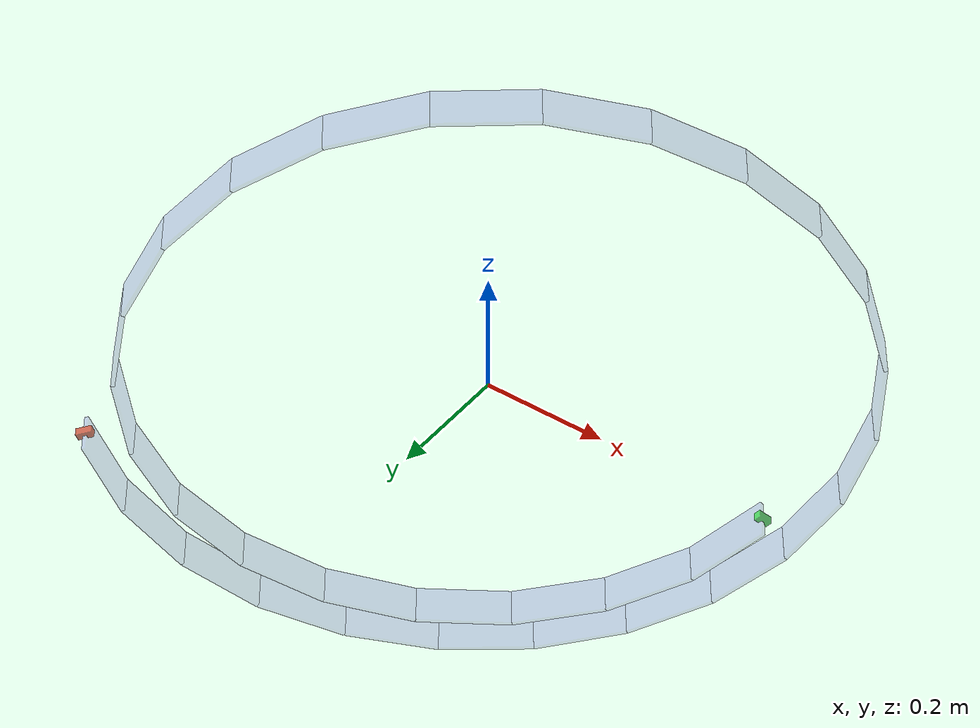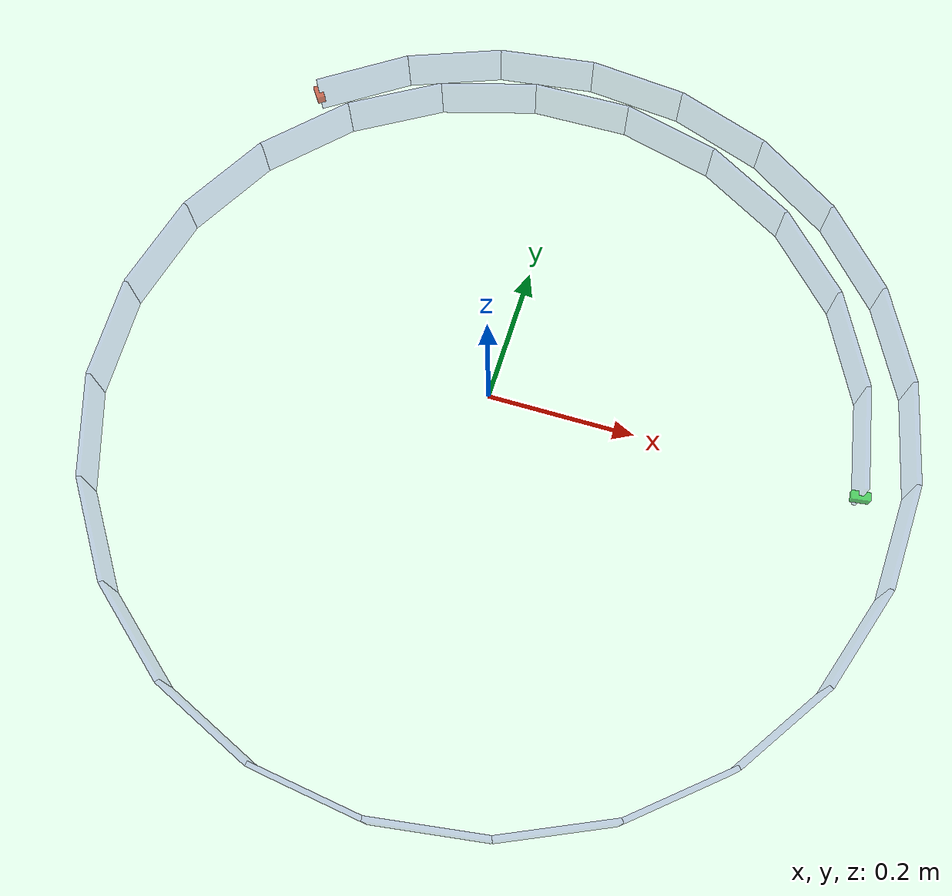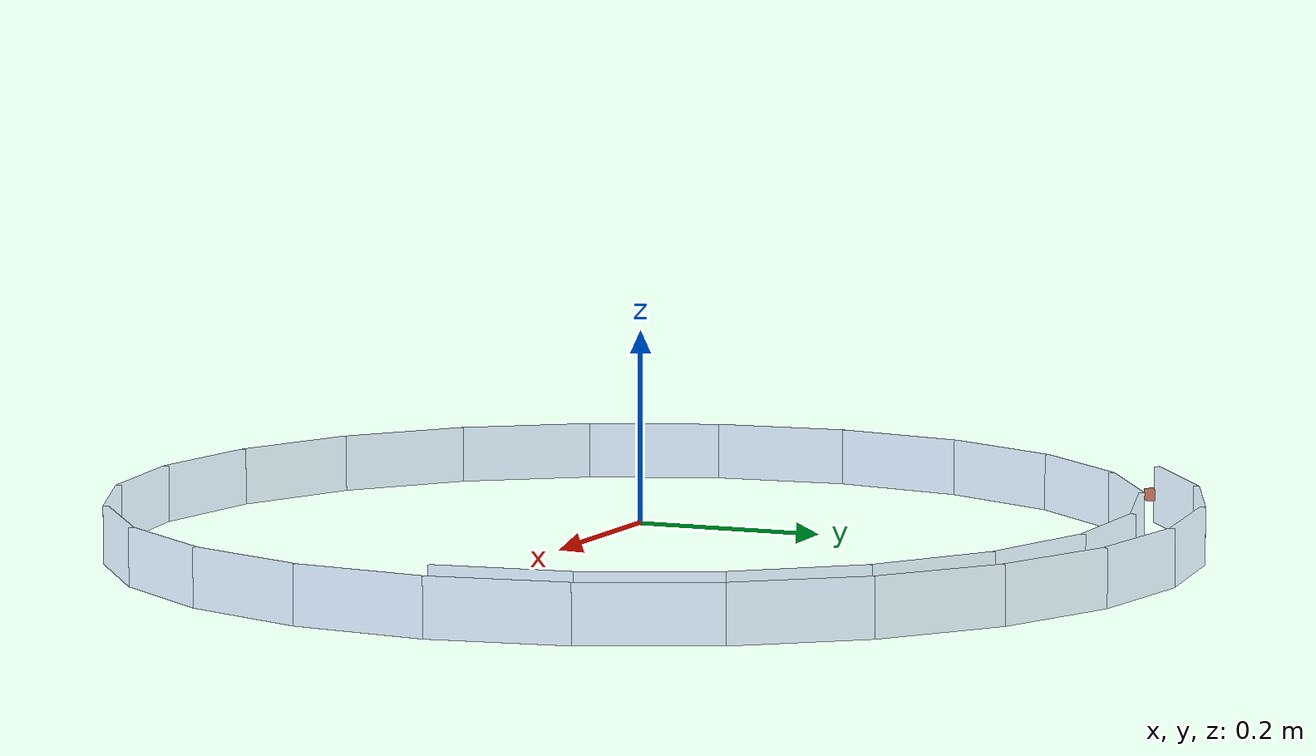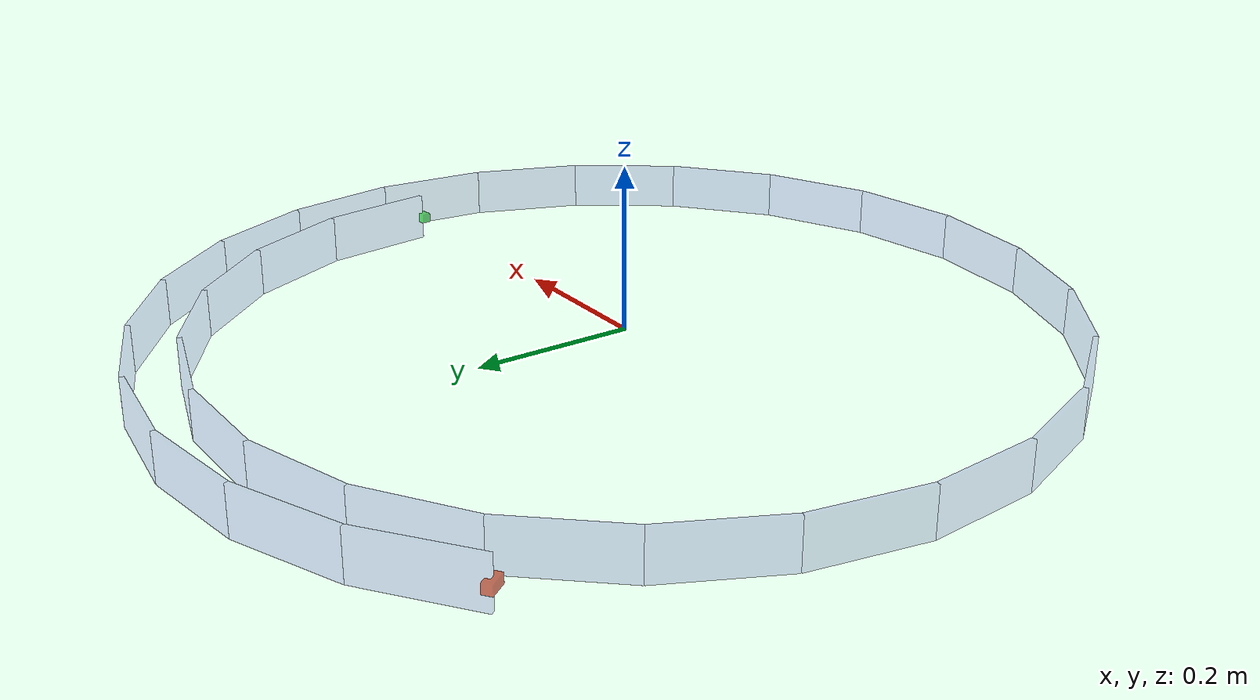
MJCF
<mujoco model="base">
  <compiler angle="radian"/>

  <option timestep="0.0005" tolerance="1e-10" integrator="RK4" cone="elliptic" jacobian="sparse" iterations="30"/>

  <size njmax="5000" nconmax="5000"/>

  <visual>
    <quality shadowsize="2048"/>
    <map stiffness="700" fogstart="10" fogend="15" znear="0.001" zfar="40" shadowscale="0.5"/>
    <rgba haze="0.15 0.25 0.35 1"/>
  </visual>

  <statistic meansize="0.05" extent="2"/>

  <extension>
    <plugin plugin="mujoco.elasticity.wire">
      <instance name="composite">
        <config key="twist" value="7859.503362562732"/>
        <config key="bend" value="157190.06725125466"/>
        <config key="flat" value="false"/>
        <config key="pqsActive" value="true"/>
        <config key="calcEnergy" value="true"/>
        <config key="fullDyn" value="true"/>
      </instance>
    </plugin>
  </extension>

  <asset>
    <texture type="skybox" builtin="gradient" rgb1="1 1 0.9" rgb2="0.9 0.9 0.81" width="512" height="3072"/>
    <texture type="2d" name="texplane" builtin="checker" mark="cross" rgb1="0.2 0.3 0.4" rgb2="0.1 0.15 0.2" markrgb="0.8 0.8 0.8" width="512" height="512"/>
    <material name="matplane" texture="texplane" texuniform="true" reflectance="0.3"/>
  </asset>

  <worldbody>
    <geom name="floor" size="3 3 0.125" pos="0 0 -10" type="plane" condim="1" material="matplane"/>
    <geom name="axis_x" size="0.002 0.015" pos="0.015 0 0" quat="0.707107 0 -0.707107 0" type="capsule" rgba="1 0 0 1"/>
    <geom name="axis_y" size="0.002 0.015" pos="0 0.015 0" quat="0.707107 0.707107 0 0" type="capsule" rgba="0 1 0 1"/>
    <geom name="axis_z" size="0.002 0.015" pos="0 0 0.015" quat="0 1 0 0" type="capsule" rgba="0 0 1 1"/>
    <body name="eef_body2" pos="0.5 0 0" quat="0.467521 0.467521 0.530494 0.530494">
      <geom name="eef_geom2" size="0.006 0.006 0.012" type="box" contype="0" conaffinity="0" mass="10" rgba="0.1 0.8 0.2 0.7"/>
      <site name="eef_body2_site" pos="0 0 0" size="0.01" group="2" rgba="0 0 0 0"/>
      <body name="eef_body2_sensor">
        <site name="sensor_site2" pos="0 0 0" size="0.01" group="2" rgba="0 0 0 0"/>
      </body>
    </body>
    <body name="eef_body" pos="-0.40541 0.423375 0" quat="-0.21628 -0.21628 0.673218 0.673218">
      <geom name="eef_geom" size="0.006 0.006 0.012" type="box" contype="0" conaffinity="0" mass="10" rgba="0.8 0.2 0.1 0.7"/>
      <site name="eef_body_site" pos="0 0 0" size="0.01" group="1" rgba="0 0 0 0"/>
      <body name="eef_body_sensor">
        <site name="sensor_site1" pos="0 0 0" size="0.01" group="1" rgba="0 0 0 0"/>
      </body>
    </body>
    <body name="stiffrope" pos="0.5 0 0">
      <joint name="freejoint_A" type="free" limited="false" actuatorfrclimited="false"/>
      <body name="B_first" quat="0.467521 0.467521 0.530494 0.530494">
        <geom name="G0" size="0.003 0.03 0.0728811" pos="0.0728811 0 0" quat="0.707107 0 -0.707107 0" type="box" conaffinity="0" condim="1" solref="0.001" mass="0.0038779" rgba="0.1 0.0533333 0.673333 0.2"/>
        <plugin instance="composite"/>
        <body name="B_1" pos="0.145762 0 0" quat="0.989439 0 0.14495 0">
          <joint name="J_1" pos="0 0 0" type="ball" group="3" actuatorfrclimited="false" damping="0.1"/>
          <geom name="G1" size="0.003 0.03 0.072884" pos="0.072884 0 0" quat="0.707107 0 -0.707107 0" type="box" conaffinity="0" condim="1" solref="0.001" mass="0.0038779" rgba="0.1 0.0533333 0.673333 0.2"/>
          <plugin instance="composite"/>
          <body name="B_2" pos="0.145768 0 0" quat="0.98956 0 0.144124 0">
            <joint name="J_2" pos="0 0 0" type="ball" group="3" actuatorfrclimited="false" damping="0.1"/>
            <geom name="G2" size="0.003 0.03 0.0728869" pos="0.0728869 0 0" quat="0.707107 0 -0.707107 0" type="box" conaffinity="0" condim="1" solref="0.001" mass="0.0038779" rgba="0.1 0.0533333 0.673333 0.2"/>
            <plugin instance="composite"/>
            <body name="B_3" pos="0.145774 0 0" quat="0.989677 0 0.143313 0">
              <joint name="J_3" pos="0 0 0" type="ball" group="3" actuatorfrclimited="false" damping="0.1"/>
              <geom name="G3" size="0.003 0.03 0.0728898" pos="0.0728898 0 0" quat="0.707107 0 -0.707107 0" type="box" conaffinity="0" condim="1" solref="0.001" mass="0.0038779" rgba="0.1 0.0533333 0.673333 0.2"/>
              <plugin instance="composite"/>
              <body name="B_4" pos="0.14578 0 0" quat="0.989793 0 0.142515 0">
                <joint name="J_4" pos="0 0 0" type="ball" group="3" actuatorfrclimited="false" damping="0.1"/>
                <geom name="G4" size="0.003 0.03 0.0728926" pos="0.0728926 0 0" quat="0.707107 0 -0.707107 0" type="box" conaffinity="0" condim="1" solref="0.001" mass="0.0038779" rgba="0.1 0.0533333 0.673333 0.2"/>
                <plugin instance="composite"/>
                <body name="B_5" pos="0.145785 0 0" quat="0.989905 0 0.14173 0">
                  <joint name="J_5" pos="0 0 0" type="ball" group="3" actuatorfrclimited="false" damping="0.1"/>
                  <geom name="G5" size="0.003 0.03 0.0728953" pos="0.0728953 0 0" quat="0.707107 0 -0.707107 0" type="box" conaffinity="0" condim="1" solref="0.001" mass="0.0038779" rgba="0.1 0.0533333 0.673333 0.2"/>
                  <plugin instance="composite"/>
                  <body name="B_6" pos="0.145791 0 0" quat="0.990016 0 0.140958 0">
                    <joint name="J_6" pos="0 0 0" type="ball" group="3" actuatorfrclimited="false" damping="0.1"/>
                    <geom name="G6" size="0.003 0.03 0.0728979" pos="0.0728979 0 0" quat="0.707107 0 -0.707107 0" type="box" conaffinity="0" condim="1" solref="0.001" mass="0.0038779" rgba="0.1 0.0533333 0.673333 0.2"/>
                    <plugin instance="composite"/>
                    <body name="B_7" pos="0.145796 0 0" quat="0.990123 0 0.140198 0">
                      <joint name="J_7" pos="0 0 0" type="ball" group="3" actuatorfrclimited="false" damping="0.1"/>
                      <geom name="G7" size="0.003 0.03 0.0729006" pos="0.0729006 0 0" quat="0.707107 0 -0.707107 0" type="box" conaffinity="0" condim="1" solref="0.001" mass="0.0038779" rgba="0.1 0.0533333 0.673333 0.2"/>
                      <plugin instance="composite"/>
                      <body name="B_8" pos="0.145801 0 0" quat="0.990229 0 0.139451 0">
                        <joint name="J_8" pos="0 0 0" type="ball" group="3" actuatorfrclimited="false" damping="0.1"/>
                        <geom name="G8" size="0.003 0.03 0.0729031" pos="0.0729031 0 0" quat="0.707107 0 -0.707107 0" type="box" conaffinity="0" condim="1" solref="0.001" mass="0.0038779" rgba="0.1 0.0533333 0.673333 0.2"/>
                        <plugin instance="composite"/>
                        <body name="B_9" pos="0.145806 0 0" quat="0.990332 0 0.138715 0">
                          <joint name="J_9" pos="0 0 0" type="ball" group="3" actuatorfrclimited="false" damping="0.1"/>
                          <geom name="G9" size="0.003 0.03 0.0729056" pos="0.0729056 0 0" quat="0.707107 0 -0.707107 0" type="box" conaffinity="0" condim="1" solref="0.001" mass="0.0038779" rgba="0.1 0.0533333 0.673333 0.2"/>
                          <plugin instance="composite"/>
                          <body name="B_10" pos="0.145811 0 0" quat="0.990433 0 0.137991 0">
                            <joint name="J_10" pos="0 0 0" type="ball" group="3" actuatorfrclimited="false" damping="0.1"/>
                            <geom name="G10" size="0.003 0.03 0.072908" pos="0.072908 0 0" quat="0.707107 0 -0.707107 0" type="box" conaffinity="0" condim="1" solref="0.001" mass="0.0038779" rgba="0.1 0.0533333 0.673333 0.2"/>
                            <plugin instance="composite"/>
                            <body name="B_11" pos="0.145816 0 0" quat="-0.990532 0 -0.137279 0">
                              <joint name="J_11" pos="0 0 0" type="ball" group="3" actuatorfrclimited="false" damping="0.1"/>
                              <geom name="G11" size="0.003 0.03 0.0729104" pos="0.0729104 0 0" quat="0.707107 0 -0.707107 0" type="box" conaffinity="0" condim="1" solref="0.001" mass="0.0038779" rgba="0.1 0.0533333 0.673333 0.2"/>
                              <plugin instance="composite"/>
                              <body name="B_12" pos="0.145821 0 0" quat="0.99063 0 0.136577 0">
                                <joint name="J_12" pos="0 0 0" type="ball" group="3" actuatorfrclimited="false" damping="0.1"/>
                                <geom name="G12" size="0.003 0.03 0.0729128" pos="0.0729128 0 0" quat="0.707107 0 -0.707107 0" type="box" conaffinity="0" condim="1" solref="0.001" mass="0.0038779" rgba="0.1 0.0533333 0.673333 0.2"/>
                                <plugin instance="composite"/>
                                <body name="B_13" pos="0.145826 0 0" quat="0.990725 0 0.135885 0">
                                  <joint name="J_13" pos="0 0 0" type="ball" group="3" actuatorfrclimited="false" damping="0.1"/>
                                  <geom name="G13" size="0.003 0.03 0.0729151" pos="0.0729151 0 0" quat="0.707107 0 -0.707107 0" type="box" conaffinity="0" condim="1" solref="0.001" mass="0.0038779" rgba="0.1 0.0533333 0.673333 0.2"/>
                                  <plugin instance="composite"/>
                                  <body name="B_14" pos="0.14583 0 0" quat="0.990818 0 0.135205 0">
                                    <joint name="J_14" pos="0 0 0" type="ball" group="3" actuatorfrclimited="false" damping="0.1"/>
                                    <geom name="G14" size="0.003 0.03 0.0729173" pos="0.0729173 0 0" quat="0.707107 0 -0.707107 0" type="box" conaffinity="0" condim="1" solref="0.001" mass="0.0038779" rgba="0.1 0.0533333 0.673333 0.2"/>
                                    <plugin instance="composite"/>
                                    <body name="B_15" pos="0.145835 0 0" quat="0.990909 0 0.134534 0">
                                      <joint name="J_15" pos="0 0 0" type="ball" group="3" actuatorfrclimited="false" damping="0.1"/>
                                      <geom name="G15" size="0.003 0.03 0.0729195" pos="0.0729195 0 0" quat="0.707107 0 -0.707107 0" type="box" conaffinity="0" condim="1" solref="0.001" mass="0.0038779" rgba="0.1 0.0533333 0.673333 0.2"/>
                                      <plugin instance="composite"/>
                                      <body name="B_16" pos="0.145839 0 0" quat="0.990998 0 0.133873 0">
                                        <joint name="J_16" pos="0 0 0" type="ball" group="3" actuatorfrclimited="false" damping="0.1"/>
                                        <geom name="G16" size="0.003 0.03 0.0729217" pos="0.0729217 0 0" quat="0.707107 0 -0.707107 0" type="box" conaffinity="0" condim="1" solref="0.001" mass="0.0038779" rgba="0.1 0.0533333 0.673333 0.2"/>
                                        <plugin instance="composite"/>
                                        <body name="B_17" pos="0.145843 0 0" quat="0.991086 0 0.133222 0">
                                          <joint name="J_17" pos="0 0 0" type="ball" group="3" actuatorfrclimited="false" damping="0.1"/>
                                          <geom name="G17" size="0.003 0.03 0.0729238" pos="0.0729238 0 0" quat="0.707107 0 -0.707107 0" type="box" conaffinity="0" condim="1" solref="0.001" mass="0.0038779" rgba="0.1 0.0533333 0.673333 0.2"/>
                                          <plugin instance="composite"/>
                                          <body name="B_18" pos="0.145848 0 0" quat="0.991172 0 0.13258 0">
                                            <joint name="J_18" pos="0 0 0" type="ball" group="3" actuatorfrclimited="false" damping="0.1"/>
                                            <geom name="G18" size="0.003 0.03 0.0729259" pos="0.0729259 0 0" quat="0.707107 0 -0.707107 0" type="box" conaffinity="0" condim="1" solref="0.001" mass="0.0038779" rgba="0.1 0.0533333 0.673333 0.2"/>
                                            <plugin instance="composite"/>
                                            <body name="B_19" pos="0.145852 0 0" quat="0.991257 0 0.131948 0">
                                              <joint name="J_19" pos="0 0 0" type="ball" group="3" actuatorfrclimited="false" damping="0.1"/>
                                              <geom name="G19" size="0.003 0.03 0.0729279" pos="0.0729279 0 0" quat="0.707107 0 -0.707107 0" type="box" conaffinity="0" condim="1" solref="0.001" mass="0.0038779" rgba="0.1 0.0533333 0.673333 0.2"/>
                                              <plugin instance="composite"/>
                                              <body name="B_20" pos="0.145856 0 0" quat="0.99134 0 0.131324 0">
                                                <joint name="J_20" pos="0 0 0" type="ball" group="3" actuatorfrclimited="false" damping="0.1"/>
                                                <geom name="G20" size="0.003 0.03 0.0729299" pos="0.0729299 0 0" quat="0.707107 0 -0.707107 0" type="box" conaffinity="0" condim="1" solref="0.001" mass="0.0038779" rgba="0.1 0.0533333 0.673333 0.2"/>
                                                <plugin instance="composite"/>
                                                <body name="B_21" pos="0.14586 0 0" quat="0.991421 0 0.130709 0">
                                                  <joint name="J_21" pos="0 0 0" type="ball" group="3" actuatorfrclimited="false" damping="0.1"/>
                                                  <geom name="G21" size="0.003 0.03 0.0729319" pos="0.0729319 0 0" quat="0.707107 0 -0.707107 0" type="box" conaffinity="0" condim="1" solref="0.001" mass="0.0038779" rgba="0.1 0.0533333 0.673333 0.2"/>
                                                  <plugin instance="composite"/>
                                                  <body name="B_22" pos="0.145864 0 0" quat="0.991501 0 0.130103 0">
                                                    <joint name="J_22" pos="0 0 0" type="ball" group="3" actuatorfrclimited="false" damping="0.1"/>
                                                    <geom name="G22" size="0.003 0.03 0.0729338" pos="0.0729338 0 0" quat="0.707107 0 -0.707107 0" type="box" conaffinity="0" condim="1" solref="0.001" mass="0.0038779" rgba="0.1 0.0533333 0.673333 0.2"/>
                                                    <plugin instance="composite"/>
                                                    <body name="B_23" pos="0.145868 0 0" quat="0.991579 0 0.129505 0">
                                                      <joint name="J_23" pos="0 0 0" type="ball" group="3" actuatorfrclimited="false" damping="0.1"/>
                                                      <geom name="G23" size="0.003 0.03 0.0729357" pos="0.0729357 0 0" quat="0.707107 0 -0.707107 0" type="box" conaffinity="0" condim="1" solref="0.001" mass="0.0038779" rgba="0.1 0.0533333 0.673333 0.2"/>
                                                      <plugin instance="composite"/>
                                                      <body name="B_24" pos="0.145871 0 0" quat="0.991656 0 0.128915 0">
                                                        <joint name="J_24" pos="0 0 0" type="ball" group="3" actuatorfrclimited="false" damping="0.1"/>
                                                        <geom name="G24" size="0.003 0.03 0.0729376" pos="0.0729376 0 0" quat="0.707107 0 -0.707107 0" type="box" conaffinity="0" condim="1" solref="0.001" mass="0.0038779" rgba="0.1 0.0533333 0.673333 0.2"/>
                                                        <plugin instance="composite"/>
                                                        <body name="B_25" pos="0.145875 0 0" quat="0.991731 0 0.128333 0">
                                                          <joint name="J_25" pos="0 0 0" type="ball" group="3" actuatorfrclimited="false" damping="0.1"/>
                                                          <geom name="G25" size="0.003 0.03 0.0729394" pos="0.0729394 0 0" quat="0.707107 0 -0.707107 0" type="box" conaffinity="0" condim="1" solref="0.001" mass="0.0038779" rgba="0.1 0.0533333 0.673333 0.2"/>
                                                          <plugin instance="composite"/>
                                                          <body name="B_26" pos="0.145879 0 0" quat="0.991805 0 0.127759 0">
                                                            <joint name="J_26" pos="0 0 0" type="ball" group="3" actuatorfrclimited="false" damping="0.1"/>
                                                            <geom name="G26" size="0.003 0.03 0.0729412" pos="0.0729412 0 0" quat="0.707107 0 -0.707107 0" type="box" conaffinity="0" condim="1" solref="0.001" mass="0.0038779" rgba="0.1 0.0533333 0.673333 0.2"/>
                                                            <plugin instance="composite"/>
                                                            <body name="B_27" pos="0.145882 0 0" quat="0.991878 0 0.127193 0">
                                                              <joint name="J_27" pos="0 0 0" type="ball" group="3" actuatorfrclimited="false" damping="0.1"/>
                                                              <geom name="G27" size="0.003 0.03 0.072943" pos="0.072943 0 0" quat="0.707107 0 -0.707107 0" type="box" conaffinity="0" condim="1" solref="0.001" mass="0.0038779" rgba="0.1 0.0533333 0.673333 0.2"/>
                                                              <plugin instance="composite"/>
                                                              <body name="B_28" pos="0.145886 0 0" quat="0.99195 0 0.126634 0">
                                                                <joint name="J_28" pos="0 0 0" type="ball" group="3" actuatorfrclimited="false" damping="0.1"/>
                                                                <geom name="G28" size="0.003 0.03 0.0729447" pos="0.0729447 0 0" quat="0.707107 0 -0.707107 0" type="box" conaffinity="0" condim="1" solref="0.001" mass="0.0038779" rgba="0.1 0.0533333 0.673333 0.2"/>
                                                                <plugin instance="composite"/>
                                                                <body name="B_29" pos="0.145889 0 0" quat="0.99202 0 0.126082 0">
                                                                  <joint name="J_29" pos="0 0 0" type="ball" group="3" actuatorfrclimited="false" damping="0.1"/>
                                                                  <geom name="G29" size="0.003 0.03 0.0729464" pos="0.0729464 0 0" quat="0.707107 0 -0.707107 0" type="box" conaffinity="0" condim="1" solref="0.001" mass="0.0038779" rgba="0.1 0.0533333 0.673333 0.2"/>
                                                                  <plugin instance="composite"/>
                                                                  <body name="B_30" pos="0.145893 0 0" quat="0.992089 0 0.125538 0">
                                                                    <joint name="J_30" pos="0 0 0" type="ball" group="3" actuatorfrclimited="false" damping="0.1"/>
                                                                    <geom name="G30" size="0.003 0.03 0.0729481" pos="0.0729481 0 0" quat="0.707107 0 -0.707107 0" type="box" conaffinity="0" condim="1" solref="0.001" mass="0.0038779" rgba="0.1 0.0533333 0.673333 0.2"/>
                                                                    <plugin instance="composite"/>
                                                                    <body name="B_last" pos="0.145896 0 0" quat="0.992157 0 0.125001 0">
                                                                      <joint name="J_last" pos="0 0 0" type="ball" group="3" actuatorfrclimited="false" damping="0.1"/>
                                                                      <geom name="G31" size="0.003 0.03 0.0729497" pos="0.0729497 0 0" quat="0.707107 0 -0.707107 0" type="box" conaffinity="0" condim="1" solref="0.001" mass="0.0038779" rgba="0.1 0.0533333 0.673333 0.2"/>
                                                                      <plugin instance="composite"/>
                                                                      <body name="B_last2" pos="0.145899 0 0">
                                                                        <plugin instance="composite"/>
                                                                      </body>
                                                                    </body>
                                                                  </body>
                                                                </body>
                                                              </body>
                                                            </body>
                                                          </body>
                                                        </body>
                                                      </body>
                                                    </body>
                                                  </body>
                                                </body>
                                              </body>
                                            </body>
                                          </body>
                                        </body>
                                      </body>
                                    </body>
                                  </body>
                                </body>
                              </body>
                            </body>
                          </body>
                        </body>
                      </body>
                    </body>
                  </body>
                </body>
              </body>
            </body>
          </body>
        </body>
      </body>
    </body>
  </worldbody>

  <equality>
    <weld name="weld_end" body1="B_last" body2="eef_body_sensor" anchor="0 0 0" relpose="0.145899 0 0 1 0 0 0" torquescale="1" solref="0.001"/>
    <weld name="weld_start" body1="B_first" body2="eef_body2_sensor" anchor="0 0 0" relpose="0 0 0 1 0 0 0" torquescale="1" solref="0.001"/>
  </equality>

  <sensor>
    <torque site="sensor_site1" name="torque_A"/>
    <force site="sensor_site1" name="force_A"/>
    <torque site="sensor_site2" name="torque_B"/>
    <force site="sensor_site2" name="force_B"/>
  </sensor>
</mujoco>
